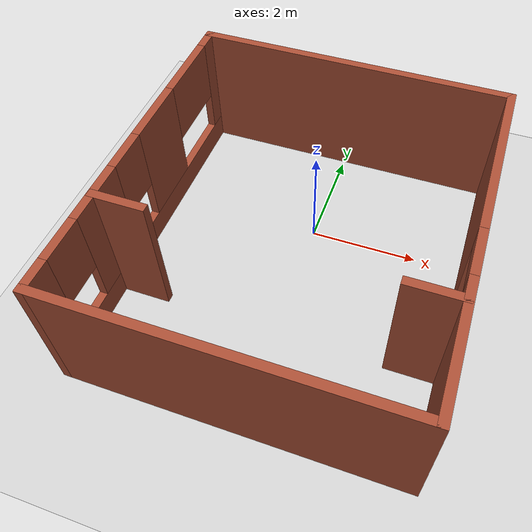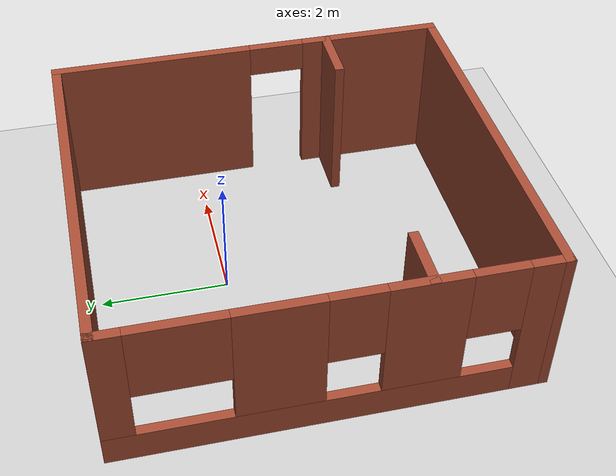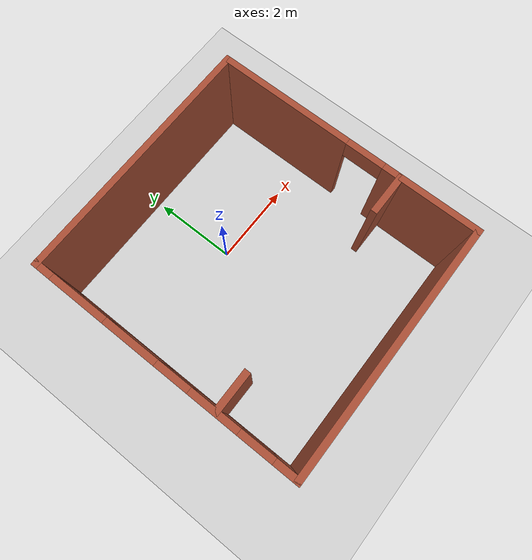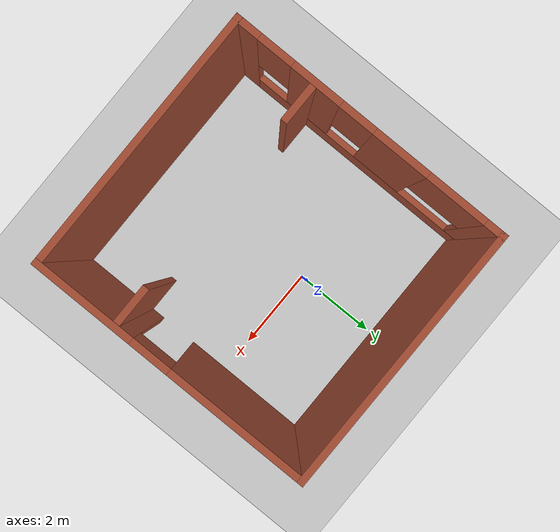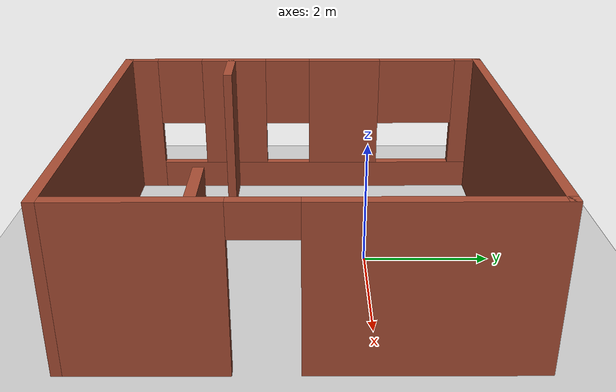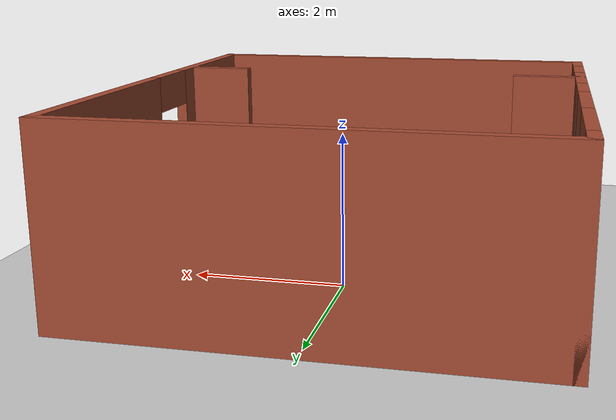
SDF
<sdf version="1.7">
 <world name="default">
  <light name="sun" type="directional">
   <pose>0 0 10 0 -0 0</pose>
   <diffuse>0.8 0.8 0.8 1</diffuse>
   <specular>0.2 0.2 0.2 1</specular>
   <attenuation>
    <range>1000</range>
    <constant>0.9</constant>
    <linear>0.01</linear>
    <quadratic>0.001</quadratic>
   </attenuation>
   <direction>-0.5 0.1 -0.9</direction>
   <spot><inner_angle>0</inner_angle><outer_angle>0</outer_angle><falloff>0</falloff></spot>
  </light>
  <model name="ground_plane">
   <static>1</static>
   <link name="link">
    <collision name="collision">
     <geometry><plane><normal>0 0 1</normal><size>100 100</size></plane></geometry>
     <surface>
      <contact><collide_bitmask>65535</collide_bitmask></contact>
      <friction><ode><mu>100</mu><mu2>50</mu2></ode></friction>
     </surface>
    </collision>
    <visual name="visual">
     <cast_shadows>0</cast_shadows>
     <geometry><plane><normal>0 0 1</normal><size>100 100</size></plane></geometry>
     <material>
      <script><uri>file://media/materials/scripts/gazebo.material</uri><name>Gazebo/Grey</name></script>
     </material>
    </visual>
   </link>
  </model>
  <gravity>0 0 -9.8</gravity>
  <magnetic_field>6e-06 2.3e-05 -4.2e-05</magnetic_field>
  <atmosphere type="adiabatic"/>
  <physics type="ode">
   <max_step_size>0.001</max_step_size>
   <real_time_factor>1</real_time_factor>
   <real_time_update_rate>1000</real_time_update_rate>
  </physics>
  <scene><ambient>0.4 0.4 0.4 1</ambient><background>0.7 0.7 0.7 1</background><shadows>1</shadows></scene>
  <audio><device>default</device></audio>
  <spherical_coordinates>
   <surface_model>EARTH_WGS84</surface_model>
   <latitude_deg>0</latitude_deg>
   <longitude_deg>0</longitude_deg>
   <elevation>0</elevation>
   <heading_deg>0</heading_deg>
  </spherical_coordinates>
  <model name="LivingRoom">
   <link name="Wall_0">
    <pose>-2.925 -0.9875 0 0 -0 1.5708</pose>
    <visual name="Wall_0_Visual_0">
     <pose>-2.9475 0 1.25 0 -0 0</pose>
     <geometry><box><size>0.605 0.15 2.5</size></box></geometry>
     <material>
      <script><uri>file://media/materials/scripts/gazebo.material</uri><name>Gazebo/Bricks</name></script>
      <ambient>1 1 1 1</ambient>
     </material>
     <meta><layer>0</layer></meta>
    </visual>
    <collision name="Wall_0_Collision_0">
     <geometry><box><size>0.605 0.15 2.5</size></box></geometry>
     <pose>-2.9475 0 1.25 0 -0 0</pose>
    </collision>
    <visual name="Wall_0_Visual_1">
     <pose>0.3025 0 0.25 0 -0 0</pose>
     <geometry><box><size>5.895 0.15 0.5</size></box></geometry>
     <material>
      <script><uri>file://media/materials/scripts/gazebo.material</uri><name>Gazebo/Bricks</name></script>
      <ambient>1 1 1 1</ambient>
     </material>
     <meta><layer>0</layer></meta>
    </visual>
    <collision name="Wall_0_Collision_1">
     <geometry><box><size>5.895 0.15 0.5</size></box></geometry>
     <pose>0.3025 0 0.25 0 -0 0</pose>
    </collision>
    <visual name="Wall_0_Visual_2">
     <pose>-1.265 0 1.5 0 -0 0</pose>
     <geometry><box><size>1.16 0.15 2</size></box></geometry>
     <material>
      <script><uri>file://media/materials/scripts/gazebo.material</uri><name>Gazebo/Bricks</name></script>
      <ambient>1 1 1 1</ambient>
     </material>
     <meta><layer>0</layer></meta>
    </visual>
    <collision name="Wall_0_Collision_2">
     <geometry><box><size>1.16 0.15 2</size></box></geometry>
     <pose>-1.265 0 1.5 0 -0 0</pose>
    </collision>
    <visual name="Wall_0_Visual_3">
     <pose>0.755 0 1.5 0 -0 0</pose>
     <geometry><box><size>1.28 0.15 2</size></box></geometry>
     <material>
      <script><uri>file://media/materials/scripts/gazebo.material</uri><name>Gazebo/Bricks</name></script>
      <ambient>1 1 1 1</ambient>
     </material>
     <meta><layer>0</layer></meta>
    </visual>
    <collision name="Wall_0_Collision_3">
     <geometry><box><size>1.28 0.15 2</size></box></geometry>
     <pose>0.755 0 1.5 0 -0 0</pose>
    </collision>
    <visual name="Wall_0_Visual_4">
     <pose>3.0075 0 1.5 0 -0 0</pose>
     <geometry><box><size>0.485 0.15 2</size></box></geometry>
     <material>
      <script><uri>file://media/materials/scripts/gazebo.material</uri><name>Gazebo/Bricks</name></script>
      <ambient>1 1 1 1</ambient>
     </material>
     <meta><layer>0</layer></meta>
    </visual>
    <collision name="Wall_0_Collision_4">
     <geometry><box><size>0.485 0.15 2</size></box></geometry>
     <pose>3.0075 0 1.5 0 -0 0</pose>
    </collision>
    <visual name="Wall_0_Visual_5">
     <pose>-2.245 0 1.9 0 -0 0</pose>
     <geometry><box><size>0.8 0.15 1.2</size></box></geometry>
     <material>
      <script><uri>file://media/materials/scripts/gazebo.material</uri><name>Gazebo/Bricks</name></script>
      <ambient>1 1 1 1</ambient>
     </material>
     <meta><layer>0</layer></meta>
    </visual>
    <collision name="Wall_0_Collision_5">
     <geometry><box><size>0.8 0.15 1.2</size></box></geometry>
     <pose>-2.245 0 1.9 0 -0 0</pose>
    </collision>
    <visual name="Wall_0_Visual_6">
     <pose>-0.285 0 1.9 0 -0 0</pose>
     <geometry><box><size>0.8 0.15 1.2</size></box></geometry>
     <material>
      <script><uri>file://media/materials/scripts/gazebo.material</uri><name>Gazebo/Bricks</name></script>
      <ambient>1 1 1 1</ambient>
     </material>
     <meta><layer>0</layer></meta>
    </visual>
    <collision name="Wall_0_Collision_6">
     <geometry><box><size>0.8 0.15 1.2</size></box></geometry>
     <pose>-0.285 0 1.9 0 -0 0</pose>
    </collision>
    <visual name="Wall_0_Visual_7">
     <pose>2.08 0 1.9 0 -0 0</pose>
     <geometry><box><size>1.37 0.15 1.2</size></box></geometry>
     <material>
      <script><uri>file://media/materials/scripts/gazebo.material</uri><name>Gazebo/Bricks</name></script>
      <ambient>1 1 1 1</ambient>
     </material>
     <meta><layer>0</layer></meta>
    </visual>
    <collision name="Wall_0_Collision_7">
     <geometry><box><size>1.37 0.15 1.2</size></box></geometry>
     <pose>2.08 0 1.9 0 -0 0</pose>
    </collision>
   </link>
   <link name="Wall_1">
    <collision name="Wall_1_Collision">
     <geometry><box><size>6 0.15 2.5</size></box></geometry>
     <pose>0 0 1.25 0 -0 0</pose>
    </collision>
    <visual name="Wall_1_Visual">
     <pose>0 0 1.25 0 -0 0</pose>
     <geometry><box><size>6 0.15 2.5</size></box></geometry>
     <material>
      <script><uri>file://media/materials/scripts/gazebo.material</uri><name>Gazebo/Bricks</name></script>
      <ambient>1 1 1 1</ambient>
     </material>
     <meta><layer>0</layer></meta>
    </visual>
    <pose>0 2.1875 0 0 -0 0</pose>
   </link>
   <link name="Wall_2">
    <pose>2.925 -0.9875 0 0 -0 -1.5708</pose>
    <visual name="Wall_2_Visual_0">
     <pose>-1.6175 0 1.25 0 -0 0</pose>
     <geometry><box><size>3.265 0.15 2.5</size></box></geometry>
     <material>
      <script><uri>file://media/materials/scripts/gazebo.material</uri><name>Gazebo/Bricks</name></script>
      <ambient>1 1 1 1</ambient>
     </material>
     <meta><layer>0</layer></meta>
    </visual>
    <collision name="Wall_2_Collision_0">
     <geometry><box><size>3.265 0.15 2.5</size></box></geometry>
     <pose>-1.6175 0 1.25 0 -0 0</pose>
    </collision>
    <visual name="Wall_2_Visual_1">
     <pose>2.0825 0 1.25 0 -0 0</pose>
     <geometry><box><size>2.335 0.15 2.5</size></box></geometry>
     <material>
      <script><uri>file://media/materials/scripts/gazebo.material</uri><name>Gazebo/Bricks</name></script>
      <ambient>1 1 1 1</ambient>
     </material>
     <meta><layer>0</layer></meta>
    </visual>
    <collision name="Wall_2_Collision_1">
     <geometry><box><size>2.335 0.15 2.5</size></box></geometry>
     <pose>2.0825 0 1.25 0 -0 0</pose>
    </collision>
    <visual name="Wall_2_Visual_2">
     <pose>0.465 0 2.25 0 -0 0</pose>
     <geometry><box><size>0.9 0.15 0.5</size></box></geometry>
     <material>
      <script><uri>file://media/materials/scripts/gazebo.material</uri><name>Gazebo/Bricks</name></script>
      <ambient>1 1 1 1</ambient>
     </material>
     <meta><layer>0</layer></meta>
    </visual>
    <collision name="Wall_2_Collision_2">
     <geometry><box><size>0.9 0.15 0.5</size></box></geometry>
     <pose>0.465 0 2.25 0 -0 0</pose>
    </collision>
   </link>
   <link name="Wall_3">
    <collision name="Wall_3_Collision">
     <geometry><box><size>6 0.15 2.5</size></box></geometry>
     <pose>0 0 1.25 0 -0 0</pose>
    </collision>
    <visual name="Wall_3_Visual">
     <pose>0 0 1.25 0 -0 0</pose>
     <geometry><box><size>6 0.15 2.5</size></box></geometry>
     <material>
      <script><uri>file://media/materials/scripts/gazebo.material</uri><name>Gazebo/Bricks</name></script>
      <ambient>1 1 1 1</ambient>
     </material>
     <meta><layer>0</layer></meta>
    </visual>
    <pose>0 -4.1625 0 0 -0 3.14159</pose>
   </link>
   <link name="Wall_5">
    <collision name="Wall_5_Collision">
     <geometry><box><size>1 0.15 2.5</size></box></geometry>
     <pose>0 0 1.25 0 -0 0</pose>
    </collision>
    <visual name="Wall_5_Visual">
     <pose>0 0 1.25 0 -0 0</pose>
     <geometry><box><size>1 0.15 2.5</size></box></geometry>
     <material>
      <script><uri>file://media/materials/scripts/gazebo.material</uri><name>Gazebo/Bricks</name></script>
      <ambient>1 1 1 1</ambient>
     </material>
     <meta><layer>0</layer></meta>
    </visual>
    <pose>-2.49 -2.2925 0 0 -0 0</pose>
   </link>
   <link name="Wall_7">
    <collision name="Wall_7_Collision">
     <geometry><box><size>1 0.15 2.5</size></box></geometry>
     <pose>0 0 1.25 0 -0 0</pose>
    </collision>
    <visual name="Wall_7_Visual">
     <pose>0 0 1.25 0 -0 0</pose>
     <geometry><box><size>1 0.15 2.5</size></box></geometry>
     <material>
      <script><uri>file://media/materials/scripts/gazebo.material</uri><name>Gazebo/Bricks</name></script>
      <ambient>1 1 1 1</ambient>
     </material>
     <meta><layer>0</layer></meta>
    </visual>
    <pose>2.48 -2.3125 0 0 -0 3.14159</pose>
   </link>
   <static>1</static>
  </model>
  <model name="camera_model">
   <link name="camera_link">
    <pose>0 0 1.5 0 -1.57 0</pose>
    <sensor type="camera" name="camera_sensor">
     <camera>
      <horizontal_fov>0.580</horizontal_fov>
      <image><width>640</width><height>360</height></image>
      <clip><near>0.1</near><far>100</far></clip>
     </camera>
    </sensor>
   </link>
  </model>
 </world>
</sdf>
